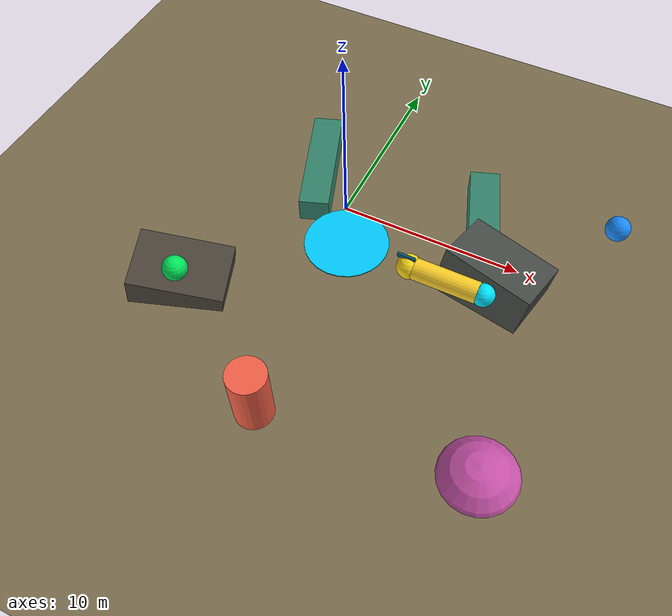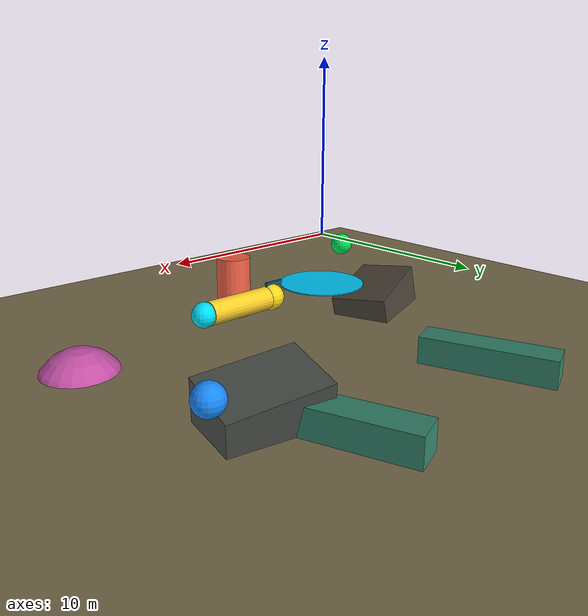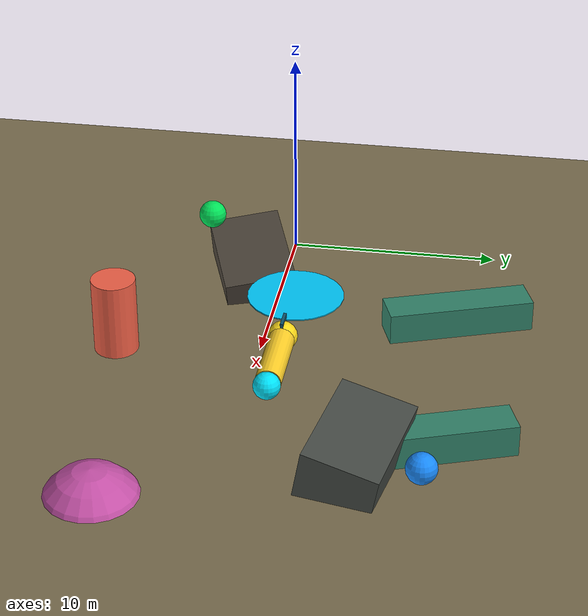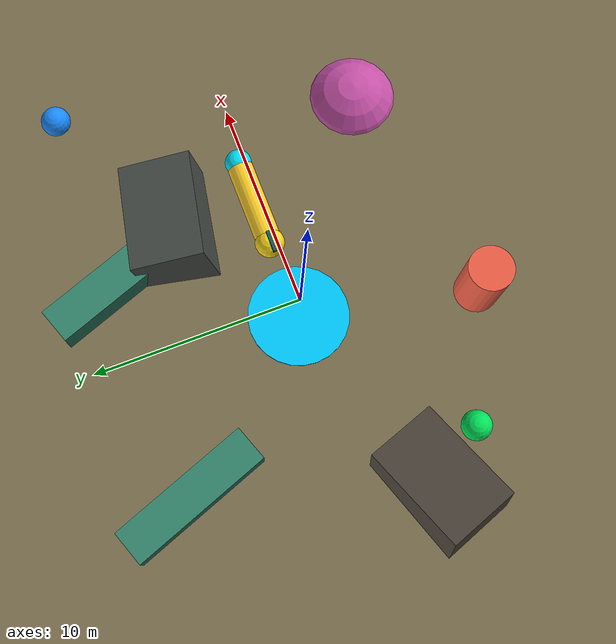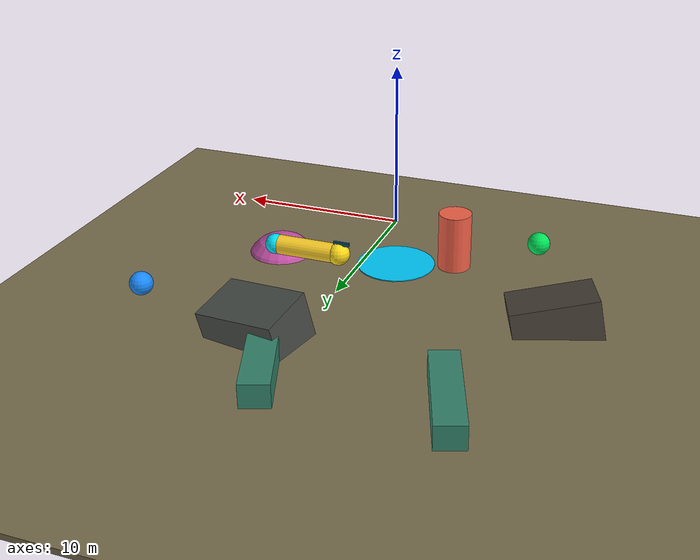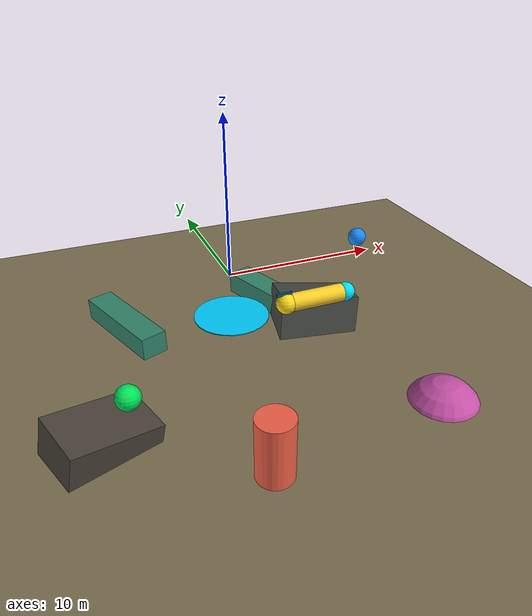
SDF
<sdf version="1.10">
 <world name="coral_reef_ocean">
  <plugin filename="gz-sim-physics-system" name="gz::sim::systems::Physics"/>
  <plugin filename="gz-sim-user-commands-system" name="gz::sim::systems::UserCommands"/>
  <plugin filename="gz-sim-scene-broadcaster-system" name="gz::sim::systems::SceneBroadcaster"/>
  <plugin filename="gz-sim-sensors-system" name="gz::sim::systems::Sensors">
   <render_engine>ogre2</render_engine>
  </plugin>
  <physics name="ocean_physics" default="true" type="ode">
   <max_step_size>0.002</max_step_size>
   <real_time_factor>1.0</real_time_factor>
   <real_time_update_rate>500</real_time_update_rate>
  </physics>
  <spherical_coordinates>
   <surface_model>EARTH_WGS84</surface_model>
   <latitude_deg>56.71897669633431</latitude_deg>
   <longitude_deg>3.515625</longitude_deg>
   <elevation>0</elevation>
   <heading_deg>0</heading_deg>
  </spherical_coordinates>
  <scene>
   <ambient>0.02 0.18 0.28 1</ambient>
   <background>0.00 0.04 0.07 1</background>
   <shadows>true</shadows>
   <fog>
    <type>linear</type>
    <color>0.01 0.18 0.25 1</color>
    <start>10</start>
    <end>85</end>
    <density>0.045</density>
   </fog>
  </scene>
  <light name="filtered_sunlight" type="directional">
   <pose>-20 -35 80 0.4 0.2 0</pose>
   <diffuse>0.34 0.62 0.72 1</diffuse>
   <specular>0.05 0.09 0.10 1</specular>
   <direction>0.25 0.45 -1</direction>
   <cast_shadows>false</cast_shadows>
  </light>
  <model name="sand_seabed">
   <static>true</static>
   <pose>0 0 -8 0 0 0</pose>
   <link name="seabed_link">
    <collision name="seabed_collision"><geometry><box><size>180 140 0.4</size></box></geometry></collision>
    <visual name="seabed_visual">
     <geometry><box><size>180 140 0.4</size></box></geometry>
     <material>
      <ambient>0.36 0.32 0.24 1</ambient>
      <diffuse>0.48 0.43 0.31 1</diffuse>
      <specular>0.02 0.02 0.02 1</specular>
     </material>
    </visual>
   </link>
  </model>
  <model name="navigation_waypoints">
   <static>true</static>
   <link name="waypoints_link">
    <visual name="wp_start">
     <pose>-8 -6 -3 0 0 0</pose>
     <geometry><sphere><radius>0.75</radius></sphere></geometry>
     <material><ambient>0.0 0.9 0.35 1</ambient><diffuse>0.0 0.9 0.35 1</diffuse></material>
    </visual>
    <visual name="wp_reef_gap">
     <pose>4 0 -3 0 0 0</pose>
     <geometry><sphere><radius>0.75</radius></sphere></geometry>
     <material><ambient>1.0 0.86 0.1 1</ambient><diffuse>1.0 0.86 0.1 1</diffuse></material>
    </visual>
    <visual name="wp_goal">
     <pose>14 8 -3 0 0 0</pose>
     <geometry><sphere><radius>0.75</radius></sphere></geometry>
     <material><ambient>0.1 0.55 1.0 1</ambient><diffuse>0.1 0.55 1.0 1</diffuse></material>
    </visual>
   </link>
  </model>
  <model name="rexrov2_spawn_marker">
   <static>true</static>
   <pose>0 0 -3 0 0 0</pose>
   <link name="spawn_marker_link">
    <visual name="spawn_ring">
     <geometry><cylinder><radius>2.5</radius><length>0.06</length></cylinder></geometry>
     <material><ambient>0.0 0.7 0.9 1</ambient><diffuse>0.0 0.8 1.0 1</diffuse></material>
    </visual>
   </link>
  </model>
  <model name="reef_rocks_and_corals">
   <static>true</static>
   <link name="reef_link">
    <collision name="rock_wall_left_collision">
     <pose>-10 -4 -8.5 0.1 0.18 0.35</pose>
     <geometry><box><size>6 4 5.5</size></box></geometry>
    </collision>
    <visual name="rock_wall_left_visual">
     <pose>-10 -4 -8.5 0.1 0.18 0.35</pose>
     <geometry><box><size>6 4 5.5</size></box></geometry>
     <material><ambient>0.19 0.17 0.15 1</ambient><diffuse>0.29 0.26 0.22 1</diffuse></material>
    </visual>
    <collision name="rock_wall_right_collision">
     <pose>8 4 -8.1 -0.2 0.1 -0.2</pose>
     <geometry><box><size>6 4 6.0</size></box></geometry>
    </collision>
    <visual name="rock_wall_right_visual">
     <pose>8 4 -8.1 -0.2 0.1 -0.2</pose>
     <geometry><box><size>6 4 6.0</size></box></geometry>
     <material><ambient>0.17 0.18 0.17 1</ambient><diffuse>0.27 0.29 0.27 1</diffuse></material>
    </visual>
    <collision name="coral_column_collision">
     <pose>-1 -10 -7.8 0 0 0</pose>
     <geometry><cylinder><radius>1.2</radius><length>8.5</length></cylinder></geometry>
    </collision>
    <visual name="coral_column_visual">
     <pose>-1 -10 -7.8 0 0 0</pose>
     <geometry><cylinder><radius>1.2</radius><length>8.5</length></cylinder></geometry>
     <material><ambient>0.86 0.28 0.20 1</ambient><diffuse>0.95 0.38 0.28 1</diffuse></material>
    </visual>
    <collision name="purple_coral_head_collision">
     <pose>12 -8 -9.2 0 0 0</pose>
     <geometry><sphere><radius>2.8</radius></sphere></geometry>
    </collision>
    <visual name="purple_coral_head_visual">
     <pose>12 -8 -9.2 0 0 0</pose>
     <geometry><sphere><radius>2.8</radius></sphere></geometry>
     <material><ambient>0.58 0.22 0.50 1</ambient><diffuse>0.78 0.32 0.66 1</diffuse></material>
    </visual>
    <collision name="green_coral_left_collision">
     <pose>-6 8 -8.7 0 0 0.35</pose>
     <geometry><box><size>2 8 5.2</size></box></geometry>
    </collision>
    <visual name="green_coral_left_visual">
     <pose>-6 8 -8.7 0 0 0.35</pose>
     <geometry><box><size>2 8 5.2</size></box></geometry>
     <material><ambient>0.12 0.36 0.30 1</ambient><diffuse>0.20 0.52 0.42 1</diffuse></material>
    </visual>
    <collision name="green_coral_right_collision">
     <pose>6 8 -8.7 0 0 0.35</pose>
     <geometry><box><size>2 8 5.2</size></box></geometry>
    </collision>
    <visual name="green_coral_right_visual">
     <pose>6 8 -8.7 0 0 0.35</pose>
     <geometry><box><size>2 8 5.2</size></box></geometry>
     <material><ambient>0.12 0.36 0.30 1</ambient><diffuse>0.20 0.52 0.42 1</diffuse></material>
    </visual>
   </link>
  </model>
  <model name="uuv_simulator_demo_body">
   <pose>6 0 -3 0 0 0</pose>
   <link name="base_link">
    <gravity>false</gravity>
    <inertial>
     <mass>120</mass>
     <inertia><ixx>45</ixx><iyy>125</iyy><izz>125</izz><ixy>0</ixy><ixz>0</ixz><iyz>0</iyz></inertia>
    </inertial>
    <collision name="body_collision">
     <pose>0 0 0 0 1.57079632679 0</pose>
     <geometry><cylinder><radius>0.65</radius><length>4.5</length></cylinder></geometry>
    </collision>
    <visual name="body_visual">
     <pose>0 0 0 0 1.57079632679 0</pose>
     <geometry><cylinder><radius>0.65</radius><length>4.5</length></cylinder></geometry>
     <material>
      <ambient>0.95 0.72 0.08 1</ambient>
      <diffuse>1.0 0.82 0.16 1</diffuse>
      <specular>0.2 0.2 0.12 1</specular>
     </material>
    </visual>
    <visual name="nose_visual">
     <pose>2.55 0 0 0 0 0</pose>
     <geometry><sphere><radius>0.68</radius></sphere></geometry>
     <material><ambient>0.0 0.9 1.0 1</ambient><diffuse>0.0 0.9 1.0 1</diffuse></material>
    </visual>
    <visual name="tail_fin_vertical">
     <pose>-2.2 0 0.75 0 0 0</pose>
     <geometry><box><size>1.1 0.16 0.25</size></box></geometry>
     <material><ambient>0.02 0.18 0.25 1</ambient><diffuse>0.06 0.34 0.44 1</diffuse></material>
    </visual>
   </link>
   <plugin filename="gz-sim-velocity-control-system" name="gz::sim::systems::VelocityControl">
    <initial_linear>0 0 0</initial_linear>
    <initial_angular>0 0 0</initial_angular>
   </plugin>
  </model>
 </world>
</sdf>
